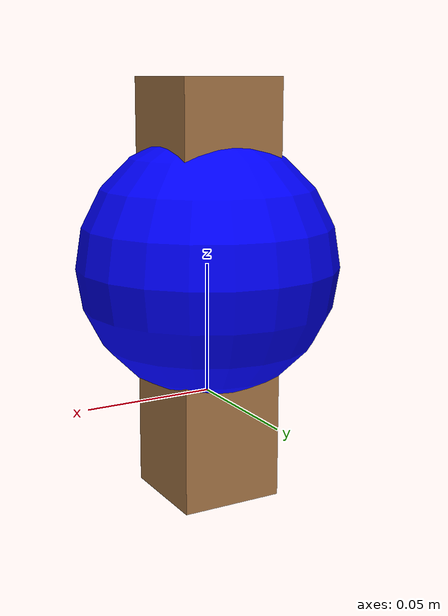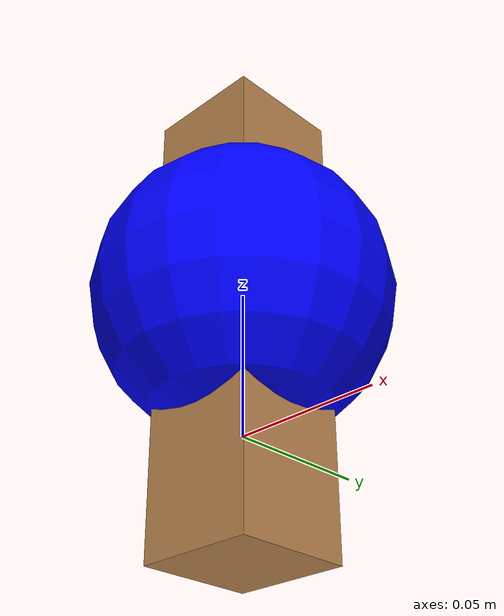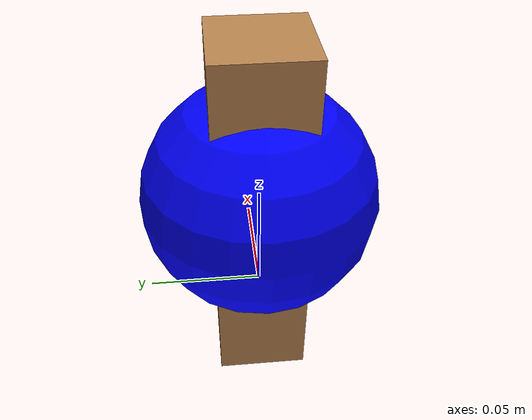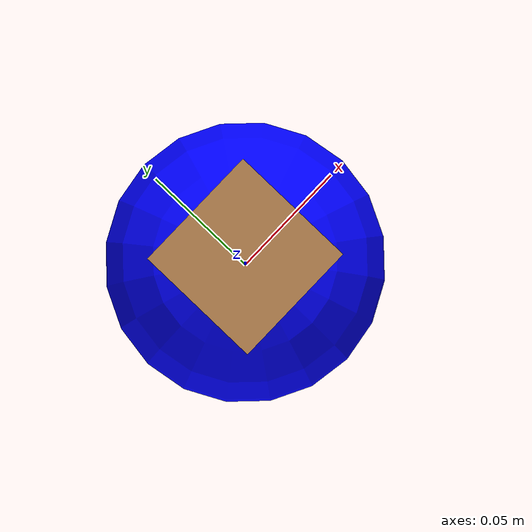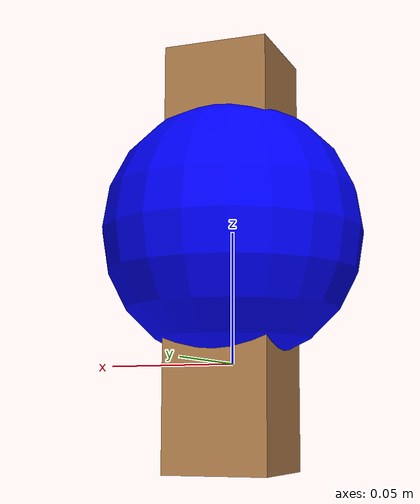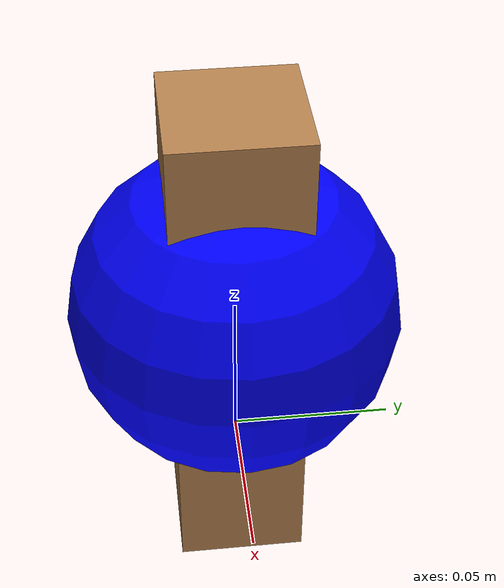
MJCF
<?xml version="1.0" encoding="utf-8"?>
<!-- from https://github.com/vikashplus/mj_envs/tree/master/mj_envs/hand_manipulation_suite/assets -->
<!-- Information about door can be found in this paper: https://arxiv.org/pdf/1709.10087.pdf -->

<mujoco model="toolbox">
  <asset>
    <texture file="../textures/light-wood.png" type="cube" name="light-wood" />
    <texture file="../textures/steel-brushed.png" type="cube" name="steel" />
    <material name="MatSteel" texture="steel" specular="1" shininess="0.3" rgba="0.9 0.9 0.9 1" />
    <material name="MatLightWood" texture="light-wood" texrepeat="3 3" specular="0.4" shininess="0.1" />
  </asset>
  <worldbody>
    <body>
      <body name="object">
        <inertial pos="0 0 0" mass="0.1" diaginertia="0.00052 0.0012 0.001"/>
        <site name="origin" pos="0 0 0" rgba="0 0 0 0" size="0.005"/>

        <geom name="handle"
          pos="0 0 0.04" size="0.02 0.02 0.08" type="box"
          density="1.0"
          group="0" friction="10 10 10"
          rgba="0 0 0 0"
          />
        <geom name="handle_vis"
          pos="0 0 0.04" size="0.02 0.02 0.08" type="box"
          group="1" contype="0" conaffinity="0"
          material="MatLightWood"
          />

        <body name="grasping_point" pos="0.0 0.0 0.05"/>
        <site name="grasping_point" pos="0.0 0.0 0.05" size="0.05" rgba="0 0 1 1" />

      </body>

      <site name="bottom_site" pos="0 0 -0.0207" rgba="0 0 0 0" size="0.005"/>
      <site name="top_site" pos="0 0 0.007" rgba="0 0 0 0" size="0.005"/>
      <site name="horizontal_radius_site" pos="0 0 0" rgba="0 0 0 0" size="0.003"/>
    </body>

  </worldbody>
</mujoco>
